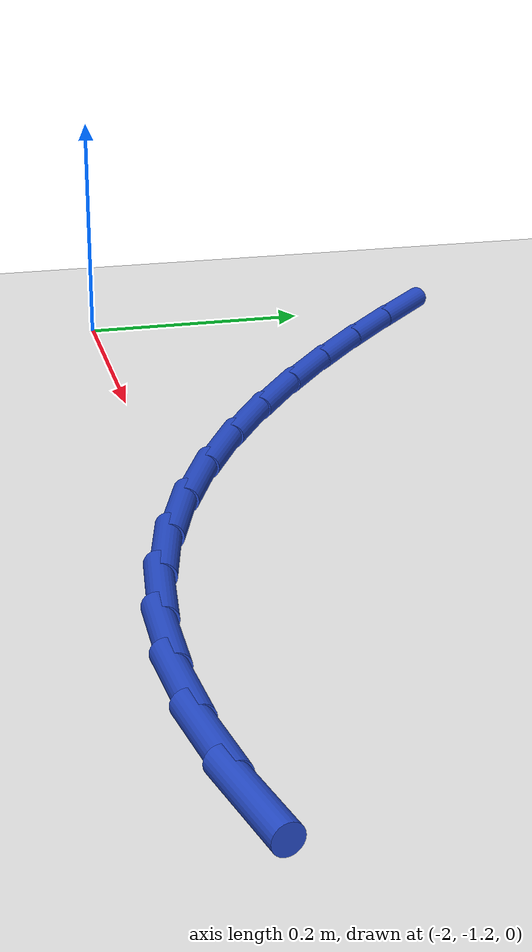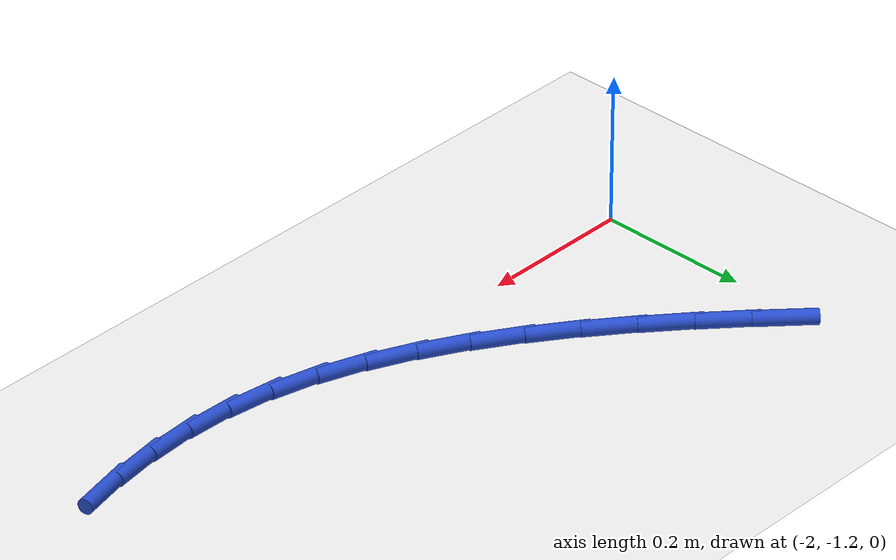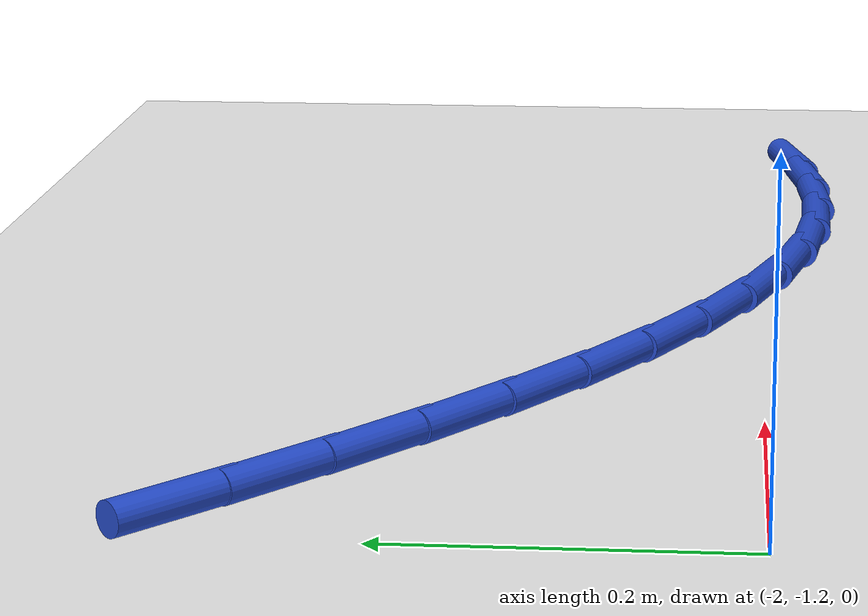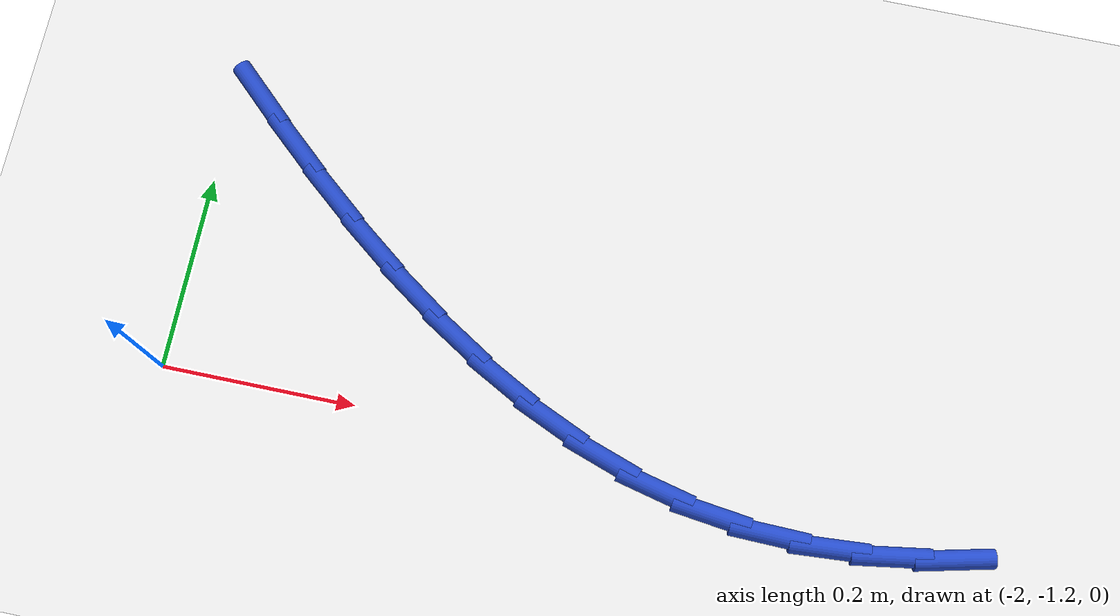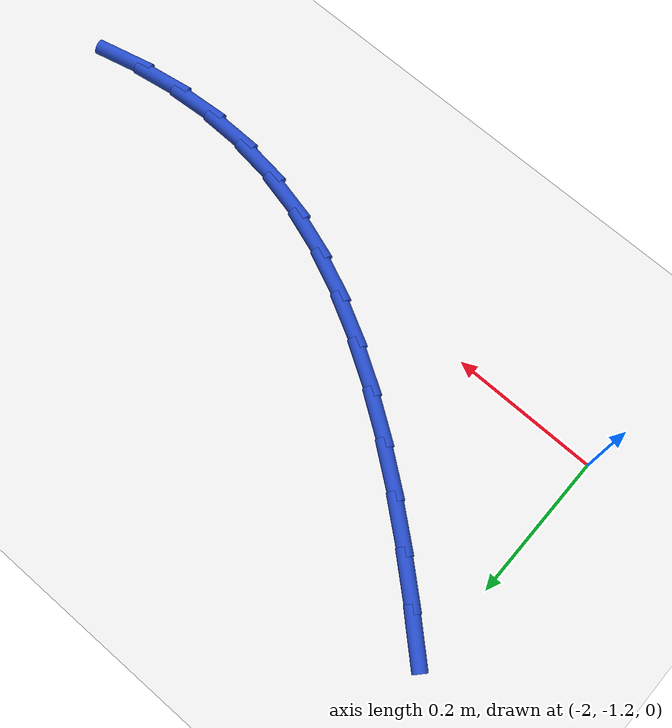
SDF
<sdf version="1.6">
 <world name="default">
  <model name="ground_plane">
   <static>1</static>
   <link name="link">
    <collision name="collision">
     <geometry><plane><normal>0 0 1</normal><size>100 100</size></plane></geometry>
     <surface><friction><ode><mu>100</mu><mu2>50</mu2></ode></friction></surface>
    </collision>
    <visual name="visual">
     <cast_shadows>0</cast_shadows>
     <geometry><plane><normal>0 0 1</normal><size>100 100</size></plane></geometry>
     <material>
      <script><uri>file://media/materials/scripts/gazebo.material</uri><name>Gazebo/WhiteGlow</name></script>
     </material>
    </visual>
   </link>
  </model>
  <model name="line">
   <link name="link_78">
    <pose>-1.9723309634142572 -0.9013183740797643 0.01 0 1.57 -0.7500507914645833</pose>
    <collision name="collision">
     <geometry><cylinder><radius>0.01</radius><length>0.08</length></cylinder></geometry>
    </collision>
    <visual name="visual">
     <material>
      <script><name>Gazebo/Blue</name><uri>file://media/materials/scripts/gazebo.material</uri></script>
     </material>
     <geometry><cylinder><radius>0.01</radius><length>0.08</length></cylinder></geometry>
    </visual>
   </link>
   <link name="link_79">
    <pose>-1.9230383515071405 -0.9472438735414698 0.01 0 1.57 -0.724197216550193</pose>
    <collision name="collision">
     <geometry><cylinder><radius>0.01</radius><length>0.08</length></cylinder></geometry>
    </collision>
    <visual name="visual">
     <material>
      <script><name>Gazebo/Blue</name><uri>file://media/materials/scripts/gazebo.material</uri></script>
     </material>
     <geometry><cylinder><radius>0.01</radius><length>0.08</length></cylinder></geometry>
    </visual>
   </link>
   <link name="link_80">
    <pose>-1.8725166590041007 -0.9919313866135083 0.01 0 1.57 -0.6922883993489621</pose>
    <collision name="collision">
     <geometry><cylinder><radius>0.01</radius><length>0.08</length></cylinder></geometry>
    </collision>
    <visual name="visual">
     <material>
      <script><name>Gazebo/Blue</name><uri>file://media/materials/scripts/gazebo.material</uri></script>
     </material>
     <geometry><cylinder><radius>0.01</radius><length>0.08</length></cylinder></geometry>
    </visual>
   </link>
   <link name="link_81">
    <pose>-1.820820189607796 -1.0347976132183891 0.01 0 1.57 -0.6537087957728173</pose>
    <collision name="collision">
     <geometry><cylinder><radius>0.01</radius><length>0.08</length></cylinder></geometry>
    </collision>
    <visual name="visual">
     <material>
      <script><name>Gazebo/Blue</name><uri>file://media/materials/scripts/gazebo.material</uri></script>
     </material>
     <geometry><cylinder><radius>0.01</radius><length>0.08</length></cylinder></geometry>
    </visual>
   </link>
   <link name="link_82">
    <pose>-1.768003247020889 -1.0752592532786196 0.01 0 1.57 -0.6076750369630576</pose>
    <collision name="collision">
     <geometry><cylinder><radius>0.01</radius><length>0.08</length></cylinder></geometry>
    </collision>
    <visual name="visual">
     <material>
      <script><name>Gazebo/Blue</name><uri>file://media/materials/scripts/gazebo.material</uri></script>
     </material>
     <geometry><cylinder><radius>0.01</radius><length>0.08</length></cylinder></geometry>
    </visual>
   </link>
   <link name="link_83">
    <pose>-1.7141201349460389 -1.112733006716709 0.01 0 1.57 -0.5532527232992422</pose>
    <collision name="collision">
     <geometry><cylinder><radius>0.01</radius><length>0.08</length></cylinder></geometry>
    </collision>
    <visual name="visual">
     <material>
      <script><name>Gazebo/Blue</name><uri>file://media/materials/scripts/gazebo.material</uri></script>
     </material>
     <geometry><cylinder><radius>0.01</radius><length>0.08</length></cylinder></geometry>
    </visual>
   </link>
   <link name="link_84">
    <pose>-1.6592251570859056 -1.1466355734551663 0.01 0 1.57 -0.4894004055970862</pose>
    <collision name="collision">
     <geometry><cylinder><radius>0.01</radius><length>0.08</length></cylinder></geometry>
    </collision>
    <visual name="visual">
     <material>
      <script><name>Gazebo/Blue</name><uri>file://media/materials/scripts/gazebo.material</uri></script>
     </material>
     <geometry><cylinder><radius>0.01</radius><length>0.08</length></cylinder></geometry>
    </visual>
   </link>
   <link name="link_85">
    <pose>-1.6033726171431484 -1.1763836534165002 0.01 0 1.57 -0.4150638648227057</pose>
    <collision name="collision">
     <geometry><cylinder><radius>0.01</radius><length>0.08</length></cylinder></geometry>
    </collision>
    <visual name="visual">
     <material>
      <script><name>Gazebo/Blue</name><uri>file://media/materials/scripts/gazebo.material</uri></script>
     </material>
     <geometry><cylinder><radius>0.01</radius><length>0.08</length></cylinder></geometry>
    </visual>
   </link>
   <link name="link_86">
    <pose>-1.5466168188204288 -1.2013939465232184 0.01 0 1.57 -0.3293495727551742</pose>
    <collision name="collision">
     <geometry><cylinder><radius>0.01</radius><length>0.08</length></cylinder></geometry>
    </collision>
    <visual name="visual">
     <material>
      <script><name>Gazebo/Blue</name><uri>file://media/materials/scripts/gazebo.material</uri></script>
     </material>
     <geometry><cylinder><radius>0.01</radius><length>0.08</length></cylinder></geometry>
    </visual>
   </link>
   <link name="link_87">
    <pose>-1.4890120658204071 -1.2210831526978303 0.01 0 1.57 -0.23180093447447778</pose>
    <collision name="collision">
     <geometry><cylinder><radius>0.01</radius><length>0.08</length></cylinder></geometry>
    </collision>
    <visual name="visual">
     <material>
      <script><name>Gazebo/Blue</name><uri>file://media/materials/scripts/gazebo.material</uri></script>
     </material>
     <geometry><cylinder><radius>0.01</radius><length>0.08</length></cylinder></geometry>
    </visual>
   </link>
   <link name="link_88">
    <pose>-1.4306126618457424 -1.2348679718628444 0.01 0 1.57 -0.12532234719822116</pose>
    <collision name="collision">
     <geometry><cylinder><radius>0.01</radius><length>0.08</length></cylinder></geometry>
    </collision>
    <visual name="visual">
     <material>
      <script><name>Gazebo/Blue</name><uri>file://media/materials/scripts/gazebo.material</uri></script>
     </material>
     <geometry><cylinder><radius>0.01</radius><length>0.08</length></cylinder></geometry>
    </visual>
   </link>
   <link name="link_89">
    <pose>-1.371484822704496 -1.2423170499812743 0.01 0 1.57 -0.02255817842658385</pose>
    <collision name="collision">
     <geometry><cylinder><radius>0.01</radius><length>0.08</length></cylinder></geometry>
    </collision>
    <visual name="visual">
     <material>
      <script><name>Gazebo/Blue</name><uri>file://media/materials/scripts/gazebo.material</uri></script>
     </material>
     <geometry><cylinder><radius>0.01</radius><length>0.08</length></cylinder></geometry>
    </visual>
   </link>
   <link name="link_90">
    <pose>-1.311746962685942 -1.2436648559141217 0.01 0 1.57 0.07189546883441285</pose>
    <collision name="collision">
     <geometry><cylinder><radius>0.01</radius><length>0.08</length></cylinder></geometry>
    </collision>
    <visual name="visual">
     <material>
      <script><name>Gazebo/Blue</name><uri>file://media/materials/scripts/gazebo.material</uri></script>
     </material>
     <geometry><cylinder><radius>0.01</radius><length>0.08</length></cylinder></geometry>
    </visual>
   </link>
   <link name="link_91">
    <pose>-1.251531789778977 -1.239328183223956 0.01 0 1.57 0.15728302223702856</pose>
    <collision name="collision">
     <geometry><cylinder><radius>0.01</radius><length>0.08</length></cylinder></geometry>
    </collision>
    <visual name="visual">
     <material>
      <script><name>Gazebo/Blue</name><uri>file://media/materials/scripts/gazebo.material</uri></script>
     </material>
     <geometry><cylinder><radius>0.01</radius><length>0.08</length></cylinder></geometry>
    </visual>
   </link>
   <link name="link_92">
    <pose>-1.1909720123390806 -1.2297238301493025 0.01 0 1.57 0.23352187379994815</pose>
    <collision name="collision">
     <geometry><cylinder><radius>0.01</radius><length>0.08</length></cylinder></geometry>
    </collision>
    <visual name="visual">
     <material>
      <script><name>Gazebo/Blue</name><uri>file://media/materials/scripts/gazebo.material</uri></script>
     </material>
     <geometry><cylinder><radius>0.01</radius><length>0.08</length></cylinder></geometry>
    </visual>
   </link>
  </model>
 </world>
</sdf>
